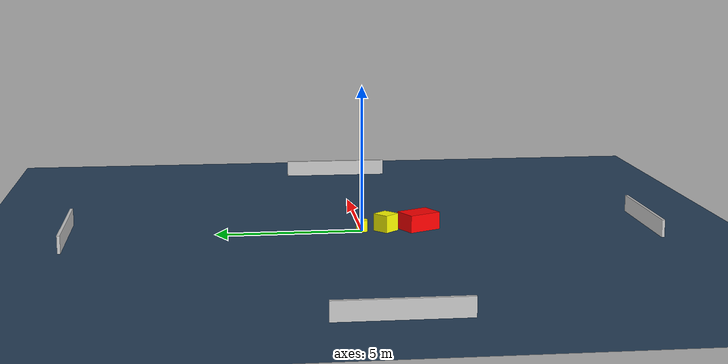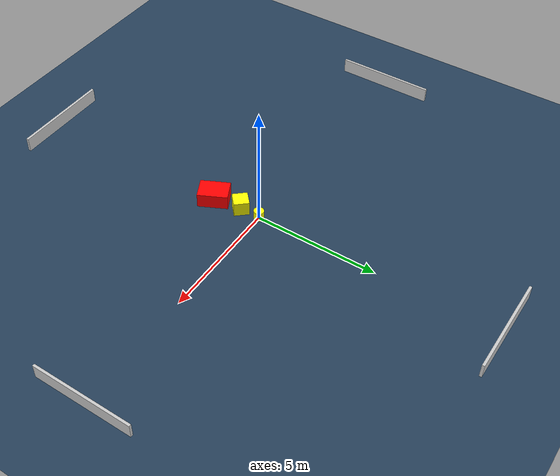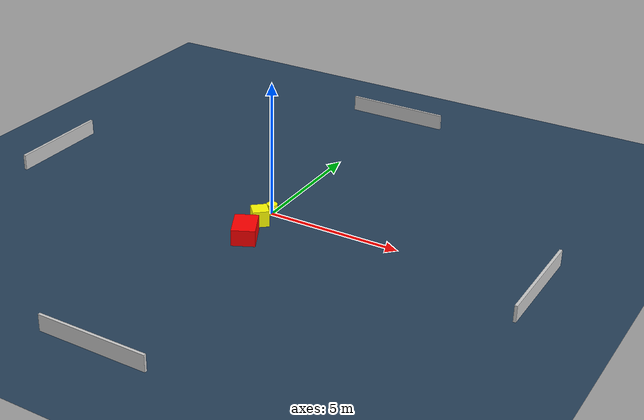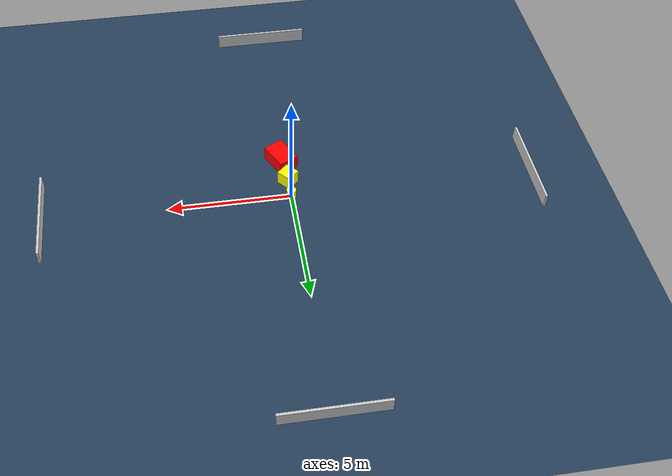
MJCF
<?xml version="1.0" ?>
<mujoco model="generated_environment">
  <option timestep="0.01" integrator="RK4" cone="elliptic"/>
  <default>
    <geom density="1"/>
  </default>
  <asset>
    <texture builtin="gradient" height="3072" name="skybox" rgb1="0.3 0.5 0.7" rgb2="0 0 0" type="skybox" width="512"/>
    <texture builtin="checker" height="300" name="groundplane" rgb1="0.2 0.3 0.4" rgb2="0.1 0.2 0.3" type="2d" width="300"/>
    <material name="groundplane" reflectance="0.2" texrepeat="5 5" texture="groundplane"/>
  </asset>
  <worldbody>
    <light dir="0 0 -1" directional="true" pos="0 0 1.5"/>
    <geom condim="3" friction="0.5 0.005 0.001" material="groundplane" name="floor" pos="0 0 0" size="0 0 0.05" type="plane"/>
    <body name="walls">
      <geom name="wall_1" condim="4" pos="-10.0 0.0 0.3" rgba="0.800000011920929 0.800000011920929 0.800000011920929 1.0" size="0.05 2.0 0.3" type="box"/>
      <geom name="wall_2" condim="4" pos="10.0 0.0 0.3" rgba="0.800000011920929 0.800000011920929 0.800000011920929 1.0" size="0.05 2.0 0.3" type="box"/>
      <geom name="wall_3" condim="4" pos="0.0 -10.0 0.3" rgba="0.800000011920929 0.800000011920929 0.800000011920929 1.0" size="2.0 0.05 0.3" type="box"/>
      <geom name="wall_4" condim="4" pos="0.0 10.0 0.3" rgba="0.800000011920929 0.800000011920929 0.800000011920929 1.0" size="2.0 0.05 0.3" type="box"/>
    </body>
    <body name="robot">
      <joint name="joint_x" type="slide" pos="0 0 0" axis="1 0 0"/>
      <joint name="joint_y" type="slide" pos="0 0 0" axis="0 1 0"/>
      <geom name="robot" type="cylinder" pos="0.0 0.0 0.2" size="0.2 0.2 0.0" mass="5.0" friction="1.0 0.005 0.0001" condim="4" rgba="1.0 1.0 0.0 1.0"/>
    </body>
    <body name="obstacle_1_movable">
      <geom name="obstacle_1_movable" condim="4" pos="0.013840581278220253 -0.8284092077735624 0.3" euler="0 0 132.09419951829483" friction="0.0 0.005 0.001" rgba="1.0 1.0 0.0 1.0" size="0.3031128144697926 0.29682977727453913 0.3" type="box" mass="0.1"/>
      <joint type="free"/>
    </body>
    <body name="obstacle_2_static">
      <geom name="obstacle_2_static" condim="4" pos="0.1447392356904037 -1.985682231227048 0.3" euler="0 0 116.4857991259242" friction="0.0 0.005 0.001" rgba="1.0 0.0 0.0 1.0" size="0.5952250748186343 0.42266844949246185 0.3" type="box"/>
    </body>
  </worldbody>
  <actuator>
    <motor name="actuator_x" joint="joint_x" gear="1" ctrlrange="-1 1"/>
    <motor name="actuator_y" joint="joint_y" gear="1" ctrlrange="-1 1"/>
  </actuator>
</mujoco>
